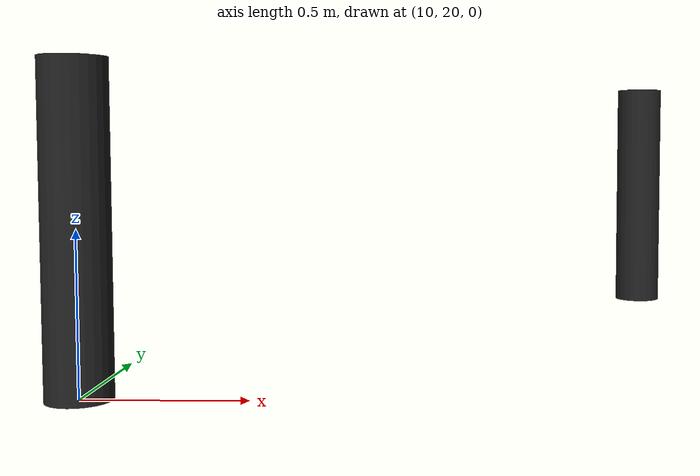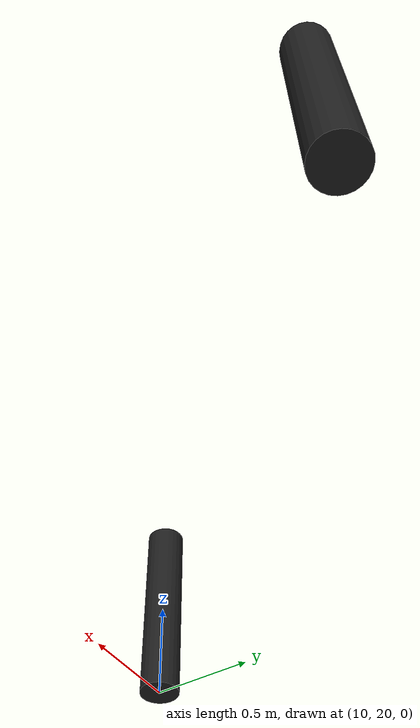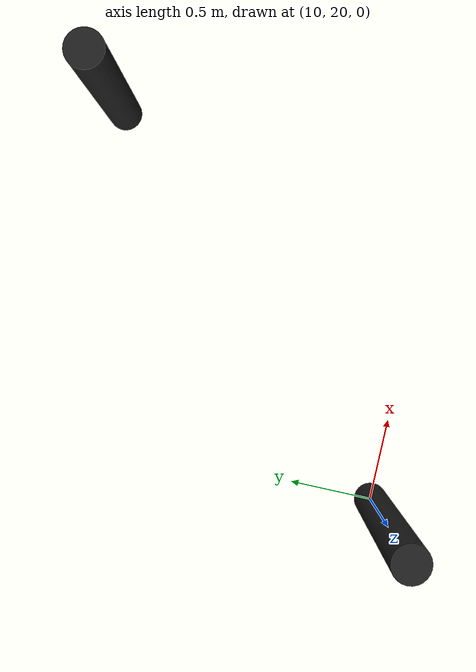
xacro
<?xml version="1.0"?>

<robot name="obstacles" xmlns:xacro="http://www.ros.org/wiki/xacro" >

	<!-- Necessary includes -->
	<xacro:include filename="$(find vero)/objects/cylinder.urdf.xacro" />

	<link name="world"/>

	<xacro:cylinder_tree name="cylinder_0" parent_link="world" x="10.0" y="20.0" />
	<xacro:cylinder_tree name="cylinder_1" parent_link="world" x="12.0" y="22.0" />

</robot>

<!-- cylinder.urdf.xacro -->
<robot name="cylinder_tree" xmlns:xacro="http://www.ros.org/wiki/xacro">
  <!-- cylinder -->
  <xacro:macro name="cylinder_tree" params="name parent_link x y ">
    <joint name="${name}" type="fixed">
      <origin xyz="${x} ${y} 0.5" rpy="0.0 0.0 0.0" />
      <parent link="${parent_link}" />
      <child link="${name}_link" />
    </joint>

    <link name="${name}_link">
      <inertial>
        <origin xyz="${x} ${y} 0.5" />
        <mass value="1000.0" />
        <inertia ixx="100"  ixy="0"  ixz="0" iyy="100" iyz="0" izz="100" />
      </inertial>
      <visual>
        <geometry>
          <cylinder radius="0.1" length="1.0" />
        </geometry>
      </visual>
      <collision>
        <geometry>
          <cylinder radius="0.1" length="1.0" />
        </geometry>
      </collision>
    </link>

    <gazebo reference="${name}_link">
      <static>true</static>
      <material>Gazebo/Black</material>
    </gazebo>
  </xacro:macro>
</robot>
